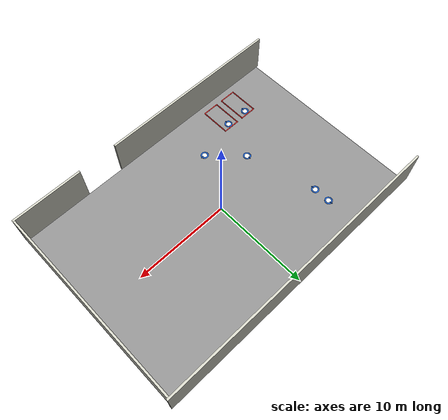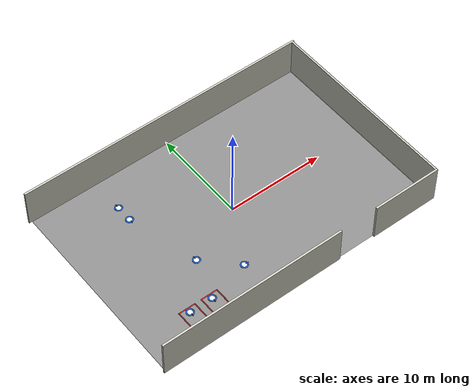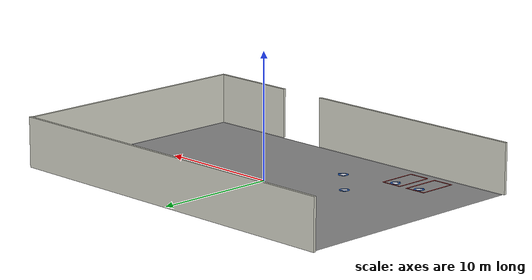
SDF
<sdf version="1.8">
 <world name="warehouse">
  <model name="Floor">
   <static>true</static>
   <link name="link">
    <collision name="collision">
     <geometry><plane><normal>0 0 1</normal><size>30 20</size></plane></geometry>
     <surface><friction><ode><mu>1.0</mu><mu2>1.0</mu2></ode></friction></surface>
    </collision>
    <visual name="visual">
     <geometry><plane><normal>0 0 1</normal><size>30 20</size></plane></geometry>
     <material><ambient>0.55 0.55 0.55 1</ambient><diffuse>0.55 0.55 0.55 1</diffuse></material>
    </visual>
   </link>
  </model>
  <model name="WallNorth">
   <static>true</static>
   <link name="link">
    <collision name="wallnorth_collision">
     <pose>0.000 10.100 2.000 0 0 0</pose>
     <geometry><box><size>30.600 0.200 4.000</size></box></geometry>
    </collision>
    <visual name="wallnorth_visual">
     <pose>0.000 10.100 2.000 0 0 0</pose>
     <geometry><box><size>30.600 0.200 4.000</size></box></geometry>
     <material><ambient>0.80 0.80 0.75 1</ambient><diffuse>0.80 0.80 0.75 1</diffuse></material>
    </visual>
   </link>
  </model>
  <model name="WallSouthWest">
   <static>true</static>
   <link name="link">
    <collision name="wallsouthwest_collision">
     <pose>-5.600 -10.100 2.000 0 0 0</pose>
     <geometry><box><size>19.200 0.200 4.000</size></box></geometry>
    </collision>
    <visual name="wallsouthwest_visual">
     <pose>-5.600 -10.100 2.000 0 0 0</pose>
     <geometry><box><size>19.200 0.200 4.000</size></box></geometry>
     <material><ambient>0.80 0.80 0.75 1</ambient><diffuse>0.80 0.80 0.75 1</diffuse></material>
    </visual>
   </link>
  </model>
  <model name="WallSouthEast">
   <static>true</static>
   <link name="link">
    <collision name="wallsoutheast_collision">
     <pose>11.600 -10.100 2.000 0 0 0</pose>
     <geometry><box><size>7.200 0.200 4.000</size></box></geometry>
    </collision>
    <visual name="wallsoutheast_visual">
     <pose>11.600 -10.100 2.000 0 0 0</pose>
     <geometry><box><size>7.200 0.200 4.000</size></box></geometry>
     <material><ambient>0.80 0.80 0.75 1</ambient><diffuse>0.80 0.80 0.75 1</diffuse></material>
    </visual>
   </link>
  </model>
  <model name="WallEast">
   <static>true</static>
   <link name="link">
    <collision name="walleast_collision">
     <pose>15.100 0.000 2.000 0 0 0</pose>
     <geometry><box><size>0.200 20.000 4.000</size></box></geometry>
    </collision>
    <visual name="walleast_visual">
     <pose>15.100 0.000 2.000 0 0 0</pose>
     <geometry><box><size>0.200 20.000 4.000</size></box></geometry>
     <material><ambient>0.80 0.80 0.75 1</ambient><diffuse>0.80 0.80 0.75 1</diffuse></material>
    </visual>
   </link>
  </model>
  <model name="ChargeBay1Marking">
   <static>true</static>
   <pose>-9.800 -7.700 0 0 0 0</pose>
   <link name="link">
    <visual name="edge_north">
     <pose>0.000 1.550 0.003 0 0 0</pose>
     <geometry><box><size>1.80 0.10 0.006</size></box></geometry>
     <material><ambient>0.80 0.12 0.12 1</ambient><diffuse>0.80 0.12 0.12 1</diffuse></material>
    </visual>
    <visual name="edge_south">
     <pose>0.000 -1.550 0.003 0 0 0</pose>
     <geometry><box><size>1.80 0.10 0.006</size></box></geometry>
     <material><ambient>0.80 0.12 0.12 1</ambient><diffuse>0.80 0.12 0.12 1</diffuse></material>
    </visual>
    <visual name="edge_west">
     <pose>-0.850 0.000 0.003 0 0 0</pose>
     <geometry><box><size>0.10 3.00 0.006</size></box></geometry>
     <material><ambient>0.80 0.12 0.12 1</ambient><diffuse>0.80 0.12 0.12 1</diffuse></material>
    </visual>
    <visual name="edge_east">
     <pose>0.850 0.000 0.003 0 0 0</pose>
     <geometry><box><size>0.10 3.00 0.006</size></box></geometry>
     <material><ambient>0.80 0.12 0.12 1</ambient><diffuse>0.80 0.12 0.12 1</diffuse></material>
    </visual>
   </link>
  </model>
  <model name="ChargeBay2Marking">
   <static>true</static>
   <pose>-7.400 -7.700 0 0 0 0</pose>
   <link name="link">
    <visual name="edge_north">
     <pose>0.000 1.550 0.003 0 0 0</pose>
     <geometry><box><size>1.80 0.10 0.006</size></box></geometry>
     <material><ambient>0.80 0.12 0.12 1</ambient><diffuse>0.80 0.12 0.12 1</diffuse></material>
    </visual>
    <visual name="edge_south">
     <pose>0.000 -1.550 0.003 0 0 0</pose>
     <geometry><box><size>1.80 0.10 0.006</size></box></geometry>
     <material><ambient>0.80 0.12 0.12 1</ambient><diffuse>0.80 0.12 0.12 1</diffuse></material>
    </visual>
    <visual name="edge_west">
     <pose>-0.850 0.000 0.003 0 0 0</pose>
     <geometry><box><size>0.10 3.00 0.006</size></box></geometry>
     <material><ambient>0.80 0.12 0.12 1</ambient><diffuse>0.80 0.12 0.12 1</diffuse></material>
    </visual>
    <visual name="edge_east">
     <pose>0.850 0.000 0.003 0 0 0</pose>
     <geometry><box><size>0.10 3.00 0.006</size></box></geometry>
     <material><ambient>0.80 0.12 0.12 1</ambient><diffuse>0.80 0.12 0.12 1</diffuse></material>
    </visual>
   </link>
  </model>
  <model name="StationS1Paint">
   <static>true</static>
   <pose>-3.000 -5.500 0 0 0 0</pose>
   <link name="link">
    <visual name="disc">
     <pose>0 0 0.003 0 0 0</pose>
     <geometry><cylinder><radius>0.40</radius><length>0.006</length></cylinder></geometry>
     <material><ambient>0.10 0.35 0.75 1</ambient><diffuse>0.10 0.35 0.75 1</diffuse></material>
    </visual>
    <visual name="core">
     <pose>0 0 0.004 0 0 0</pose>
     <geometry><cylinder><radius>0.26</radius><length>0.006</length></cylinder></geometry>
     <material><ambient>0.92 0.92 0.95 1</ambient><diffuse>0.92 0.92 0.95 1</diffuse></material>
    </visual>
    <visual name="tick">
     <pose>0.330 0.000 0.005 0 0 0.000</pose>
     <geometry><box><size>0.30 0.08 0.006</size></box></geometry>
     <material><ambient>0.10 0.35 0.75 1</ambient><diffuse>0.10 0.35 0.75 1</diffuse></material>
    </visual>
   </link>
  </model>
  <model name="StationS2Paint">
   <static>true</static>
   <pose>-9.800 -6.600 0 0 0 0</pose>
   <link name="link">
    <visual name="disc">
     <pose>0 0 0.003 0 0 0</pose>
     <geometry><cylinder><radius>0.40</radius><length>0.006</length></cylinder></geometry>
     <material><ambient>0.10 0.35 0.75 1</ambient><diffuse>0.10 0.35 0.75 1</diffuse></material>
    </visual>
    <visual name="core">
     <pose>0 0 0.004 0 0 0</pose>
     <geometry><cylinder><radius>0.26</radius><length>0.006</length></cylinder></geometry>
     <material><ambient>0.92 0.92 0.95 1</ambient><diffuse>0.92 0.92 0.95 1</diffuse></material>
    </visual>
    <visual name="tick">
     <pose>0.000 -0.330 0.005 0 0 -1.570796</pose>
     <geometry><box><size>0.30 0.08 0.006</size></box></geometry>
     <material><ambient>0.10 0.35 0.75 1</ambient><diffuse>0.10 0.35 0.75 1</diffuse></material>
    </visual>
   </link>
  </model>
  <model name="StationS3Paint">
   <static>true</static>
   <pose>-7.400 -6.600 0 0 0 0</pose>
   <link name="link">
    <visual name="disc">
     <pose>0 0 0.003 0 0 0</pose>
     <geometry><cylinder><radius>0.40</radius><length>0.006</length></cylinder></geometry>
     <material><ambient>0.10 0.35 0.75 1</ambient><diffuse>0.10 0.35 0.75 1</diffuse></material>
    </visual>
    <visual name="core">
     <pose>0 0 0.004 0 0 0</pose>
     <geometry><cylinder><radius>0.26</radius><length>0.006</length></cylinder></geometry>
     <material><ambient>0.92 0.92 0.95 1</ambient><diffuse>0.92 0.92 0.95 1</diffuse></material>
    </visual>
    <visual name="tick">
     <pose>0.000 -0.330 0.005 0 0 -1.570796</pose>
     <geometry><box><size>0.30 0.08 0.006</size></box></geometry>
     <material><ambient>0.10 0.35 0.75 1</ambient><diffuse>0.10 0.35 0.75 1</diffuse></material>
    </visual>
   </link>
  </model>
  <model name="StationS6Paint">
   <static>true</static>
   <pose>-8.000 6.500 0 0 0 0</pose>
   <link name="link">
    <visual name="disc">
     <pose>0 0 0.003 0 0 0</pose>
     <geometry><cylinder><radius>0.40</radius><length>0.006</length></cylinder></geometry>
     <material><ambient>0.10 0.35 0.75 1</ambient><diffuse>0.10 0.35 0.75 1</diffuse></material>
    </visual>
    <visual name="core">
     <pose>0 0 0.004 0 0 0</pose>
     <geometry><cylinder><radius>0.26</radius><length>0.006</length></cylinder></geometry>
     <material><ambient>0.92 0.92 0.95 1</ambient><diffuse>0.92 0.92 0.95 1</diffuse></material>
    </visual>
    <visual name="tick">
     <pose>0.000 0.330 0.005 0 0 1.570796</pose>
     <geometry><box><size>0.30 0.08 0.006</size></box></geometry>
     <material><ambient>0.10 0.35 0.75 1</ambient><diffuse>0.10 0.35 0.75 1</diffuse></material>
    </visual>
   </link>
  </model>
  <model name="StationS8Paint">
   <static>true</static>
   <pose>-8.000 4.800 0 0 0 0</pose>
   <link name="link">
    <visual name="disc">
     <pose>0 0 0.003 0 0 0</pose>
     <geometry><cylinder><radius>0.40</radius><length>0.006</length></cylinder></geometry>
     <material><ambient>0.10 0.35 0.75 1</ambient><diffuse>0.10 0.35 0.75 1</diffuse></material>
    </visual>
    <visual name="core">
     <pose>0 0 0.004 0 0 0</pose>
     <geometry><cylinder><radius>0.26</radius><length>0.006</length></cylinder></geometry>
     <material><ambient>0.92 0.92 0.95 1</ambient><diffuse>0.92 0.92 0.95 1</diffuse></material>
    </visual>
    <visual name="tick">
     <pose>0.000 -0.330 0.005 0 0 -1.570796</pose>
     <geometry><box><size>0.30 0.08 0.006</size></box></geometry>
     <material><ambient>0.10 0.35 0.75 1</ambient><diffuse>0.10 0.35 0.75 1</diffuse></material>
    </visual>
   </link>
  </model>
  <model name="StationS10Paint">
   <static>true</static>
   <pose>-6.000 -2.500 0 0 0 0</pose>
   <link name="link">
    <visual name="disc">
     <pose>0 0 0.003 0 0 0</pose>
     <geometry><cylinder><radius>0.40</radius><length>0.006</length></cylinder></geometry>
     <material><ambient>0.10 0.35 0.75 1</ambient><diffuse>0.10 0.35 0.75 1</diffuse></material>
    </visual>
    <visual name="core">
     <pose>0 0 0.004 0 0 0</pose>
     <geometry><cylinder><radius>0.26</radius><length>0.006</length></cylinder></geometry>
     <material><ambient>0.92 0.92 0.95 1</ambient><diffuse>0.92 0.92 0.95 1</diffuse></material>
    </visual>
    <visual name="tick">
     <pose>0.000 0.330 0.005 0 0 1.570796</pose>
     <geometry><box><size>0.30 0.08 0.006</size></box></geometry>
     <material><ambient>0.10 0.35 0.75 1</ambient><diffuse>0.10 0.35 0.75 1</diffuse></material>
    </visual>
   </link>
  </model>
 </world>
</sdf>
